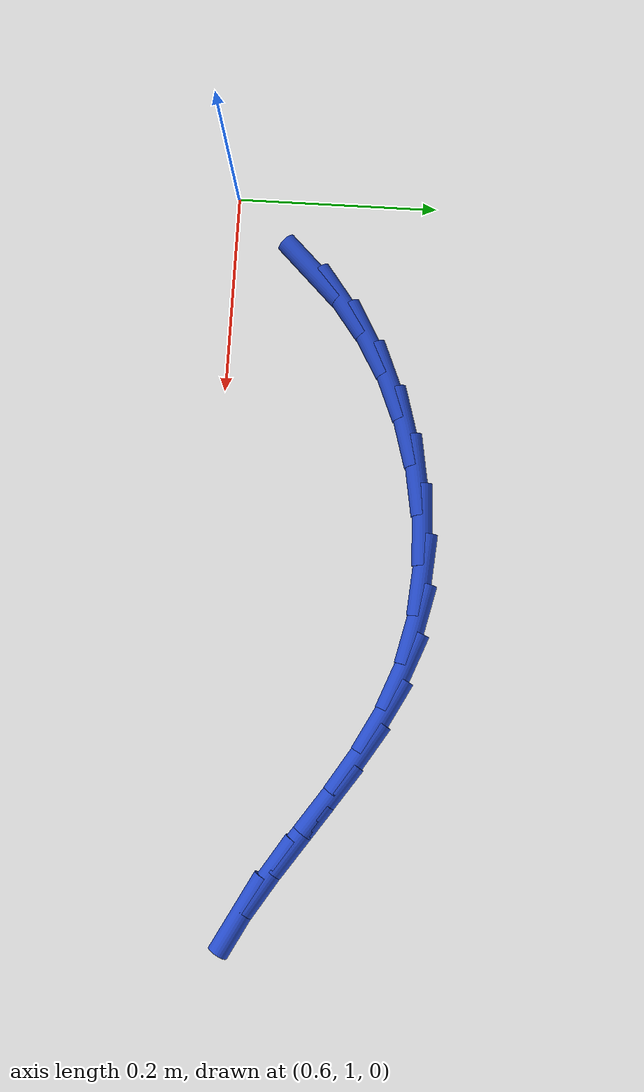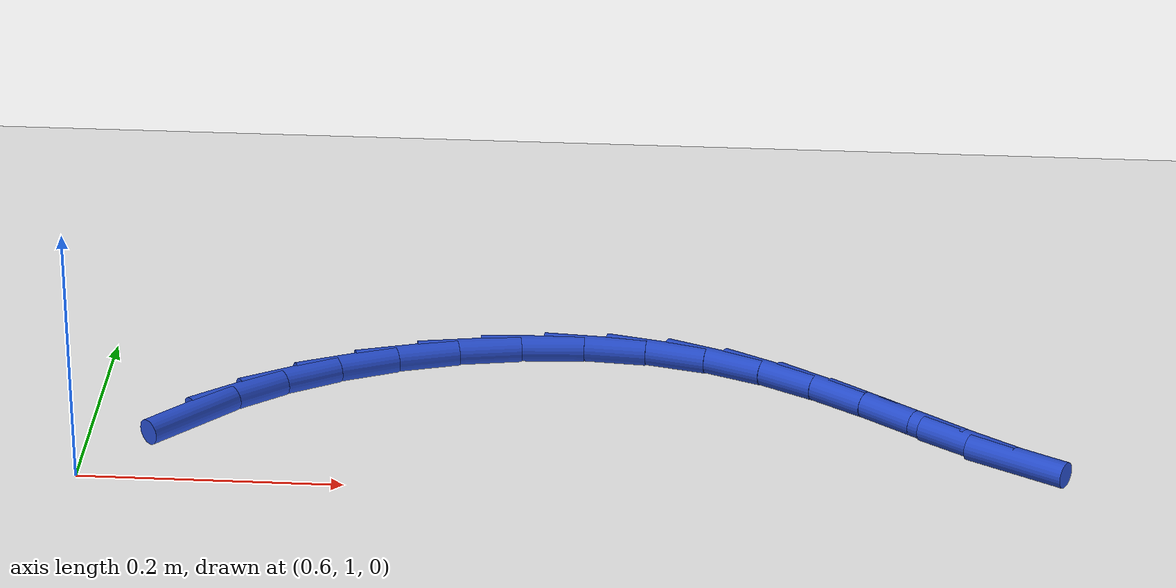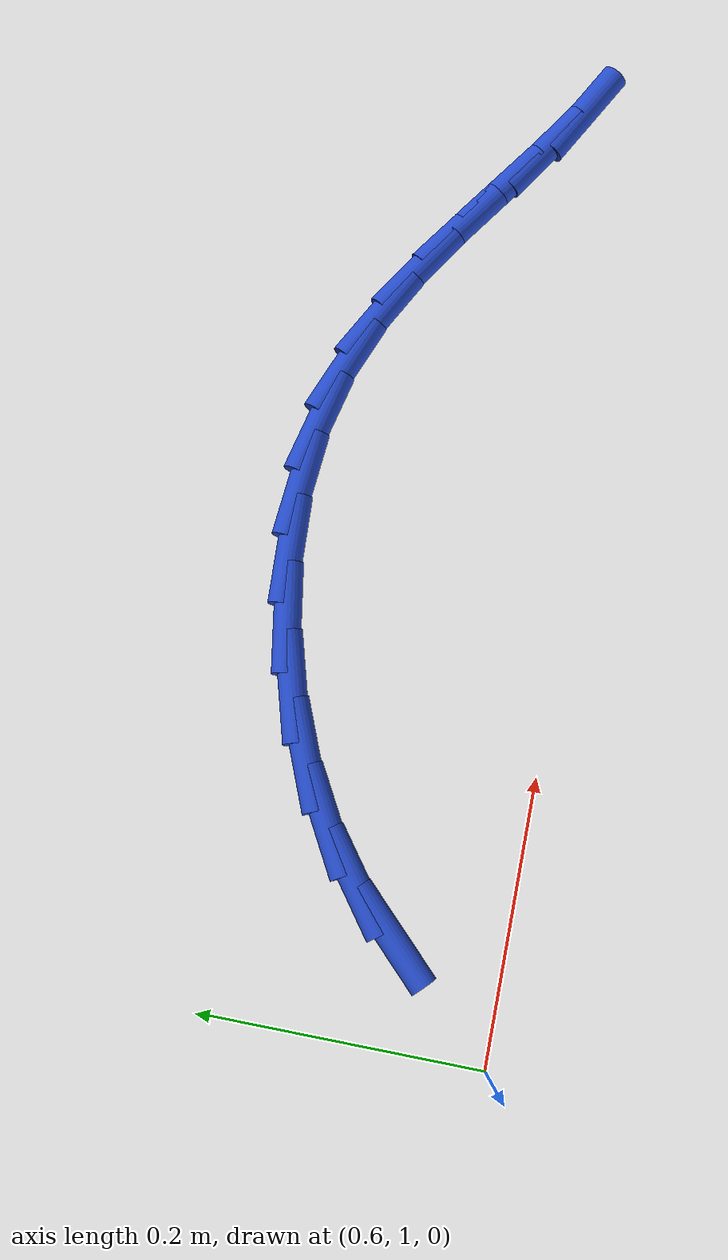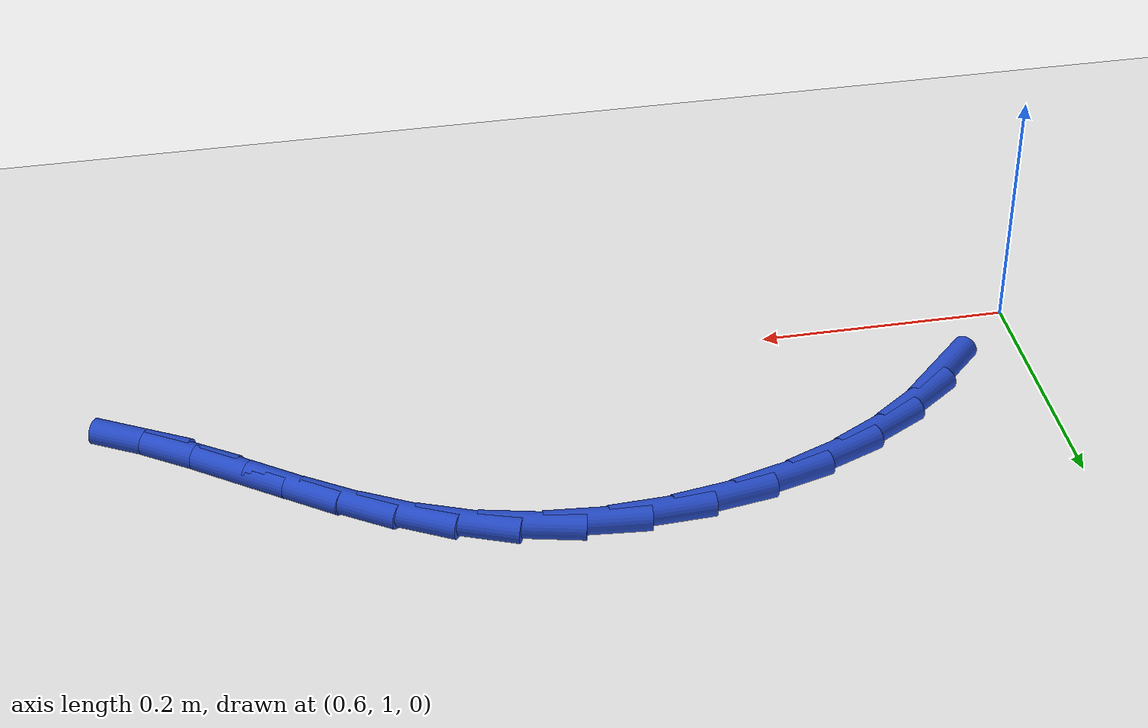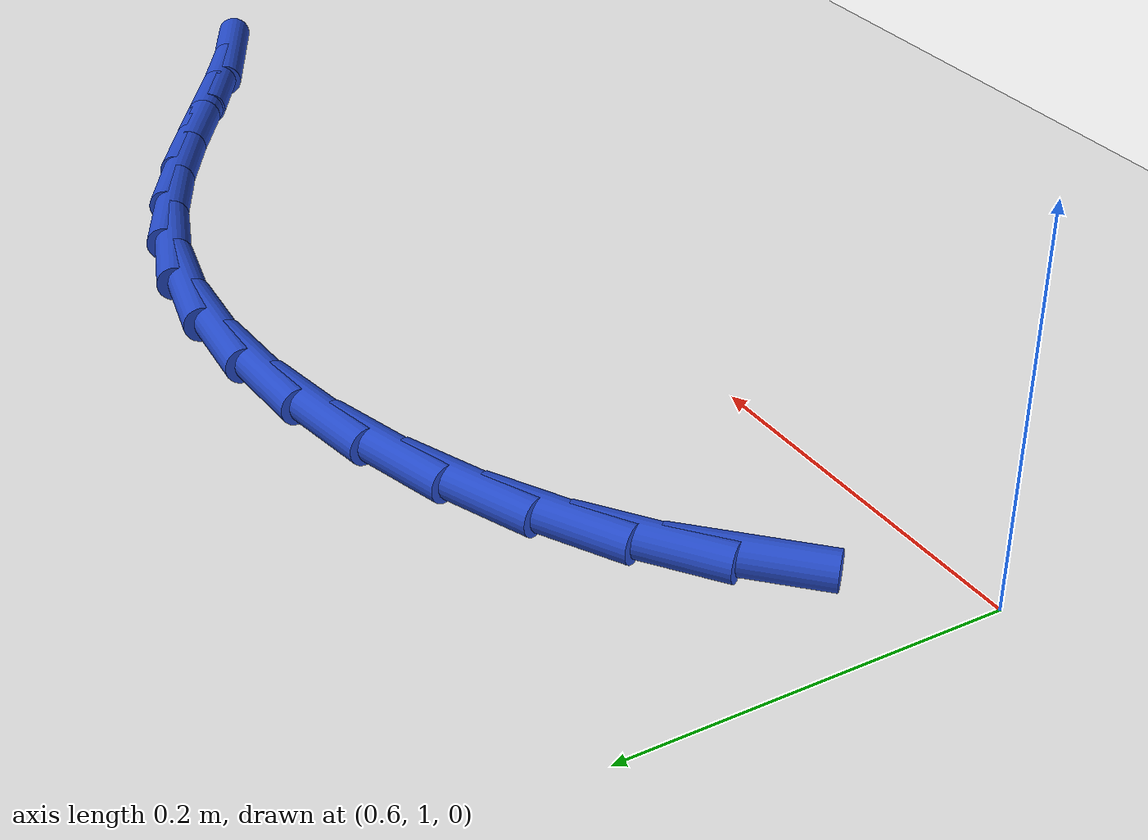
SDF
<sdf version="1.6">
 <world name="default">
  <model name="ground_plane">
   <static>1</static>
   <link name="link">
    <collision name="collision">
     <geometry><plane><normal>0 0 1</normal><size>100 100</size></plane></geometry>
     <surface><friction><ode><mu>100</mu><mu2>50</mu2></ode></friction></surface>
    </collision>
    <visual name="visual">
     <cast_shadows>0</cast_shadows>
     <geometry><plane><normal>0 0 1</normal><size>100 100</size></plane></geometry>
     <material>
      <script><uri>file://media/materials/scripts/gazebo.material</uri><name>Gazebo/WhiteGlow</name></script>
     </material>
    </visual>
   </link>
  </model>
  <model name="line">
   <link name="link_32">
    <pose>0.6750472994294157 1.0794522539602032 0.01 0 1.57 0.7867143735615041</pose>
    <collision name="collision">
     <geometry><cylinder><radius>0.01</radius><length>0.08</length></cylinder></geometry>
    </collision>
    <visual name="visual">
     <material>
      <script><name>Gazebo/Blue</name><uri>file://media/materials/scripts/gazebo.material</uri></script>
     </material>
     <geometry><cylinder><radius>0.01</radius><length>0.08</length></cylinder></geometry>
    </visual>
   </link>
   <link name="link_33">
    <pose>0.7061681466164945 1.1106551323156735 0.01 0 1.57 0.6380628842356526</pose>
    <collision name="collision">
     <geometry><cylinder><radius>0.01</radius><length>0.08</length></cylinder></geometry>
    </collision>
    <visual name="visual">
     <material>
      <script><name>Gazebo/Blue</name><uri>file://media/materials/scripts/gazebo.material</uri></script>
     </material>
     <geometry><cylinder><radius>0.01</radius><length>0.08</length></cylinder></geometry>
    </visual>
   </link>
   <link name="link_34">
    <pose>0.7430139396188868 1.137977658771415 0.01 0 1.57 0.5077910132675795</pose>
    <collision name="collision">
     <geometry><cylinder><radius>0.01</radius><length>0.08</length></cylinder></geometry>
    </collision>
    <visual name="visual">
     <material>
      <script><name>Gazebo/Blue</name><uri>file://media/materials/scripts/gazebo.material</uri></script>
     </material>
     <geometry><cylinder><radius>0.01</radius><length>0.08</length></cylinder></geometry>
    </visual>
   </link>
   <link name="link_35">
    <pose>0.7844616695295357 1.1610417516980769 0.01 0 1.57 0.3892429577701108</pose>
    <collision name="collision">
     <geometry><cylinder><radius>0.01</radius><length>0.08</length></cylinder></geometry>
    </collision>
    <visual name="visual">
     <material>
      <script><name>Gazebo/Blue</name><uri>file://media/materials/scripts/gazebo.material</uri></script>
     </material>
     <geometry><cylinder><radius>0.01</radius><length>0.08</length></cylinder></geometry>
    </visual>
   </link>
   <link name="link_36">
    <pose>0.8293883274413849 1.179469329466307 0.01 0 1.57 0.27641514583940036</pose>
    <collision name="collision">
     <geometry><cylinder><radius>0.01</radius><length>0.08</length></cylinder></geometry>
    </collision>
    <visual name="visual">
     <material>
      <script><name>Gazebo/Blue</name><uri>file://media/materials/scripts/gazebo.material</uri></script>
     </material>
     <geometry><cylinder><radius>0.01</radius><length>0.08</length></cylinder></geometry>
    </visual>
   </link>
   <link name="link_37">
    <pose>0.8766709044473785 1.1928823104467547 0.01 0 1.57 0.16383254843054224</pose>
    <collision name="collision">
     <geometry><cylinder><radius>0.01</radius><length>0.08</length></cylinder></geometry>
    </collision>
    <visual name="visual">
     <material>
      <script><name>Gazebo/Blue</name><uri>file://media/materials/scripts/gazebo.material</uri></script>
     </material>
     <geometry><cylinder><radius>0.01</radius><length>0.08</length></cylinder></geometry>
    </visual>
   </link>
   <link name="link_38">
    <pose>0.9251863916404601 1.2009026130100682 0.01 0 1.57 0.046229753475823136</pose>
    <collision name="collision">
     <geometry><cylinder><radius>0.01</radius><length>0.08</length></cylinder></geometry>
    </collision>
    <visual name="visual">
     <material>
      <script><name>Gazebo/Blue</name><uri>file://media/materials/scripts/gazebo.material</uri></script>
     </material>
     <geometry><cylinder><radius>0.01</radius><length>0.08</length></cylinder></geometry>
    </visual>
   </link>
   <link name="link_39">
    <pose>0.9738117801135738 1.2031521555268958 0.01 0 1.57 -0.08171455629872709</pose>
    <collision name="collision">
     <geometry><cylinder><radius>0.01</radius><length>0.08</length></cylinder></geometry>
    </collision>
    <visual name="visual">
     <material>
      <script><name>Gazebo/Blue</name><uri>file://media/materials/scripts/gazebo.material</uri></script>
     </material>
     <geometry><cylinder><radius>0.01</radius><length>0.08</length></cylinder></geometry>
    </visual>
   </link>
   <link name="link_40">
    <pose>1.0214240609596634 1.199252856367887 0.01 0 1.57 -0.22528909483939474</pose>
    <collision name="collision">
     <geometry><cylinder><radius>0.01</radius><length>0.08</length></cylinder></geometry>
    </collision>
    <visual name="visual">
     <material>
      <script><name>Gazebo/Blue</name><uri>file://media/materials/scripts/gazebo.material</uri></script>
     </material>
     <geometry><cylinder><radius>0.01</radius><length>0.08</length></cylinder></geometry>
    </visual>
   </link>
   <link name="link_41">
    <pose>1.0669028967350735 1.1888300336523996 0.01 0 1.57 -0.3730333630170915</pose>
    <collision name="collision">
     <geometry><cylinder><radius>0.01</radius><length>0.08</length></cylinder></geometry>
    </collision>
    <visual name="visual">
     <material>
      <script><name>Gazebo/Blue</name><uri>file://media/materials/scripts/gazebo.material</uri></script>
     </material>
     <geometry><cylinder><radius>0.01</radius><length>0.08</length></cylinder></geometry>
    </visual>
   </link>
   <link name="link_42">
    <pose>1.1096062982664967 1.1721177594563281 0.01 0 1.57 -0.4891935609033027</pose>
    <collision name="collision">
     <geometry><cylinder><radius>0.01</radius><length>0.08</length></cylinder></geometry>
    </collision>
    <visual name="visual">
     <material>
      <script><name>Gazebo/Blue</name><uri>file://media/materials/scripts/gazebo.material</uri></script>
     </material>
     <geometry><cylinder><radius>0.01</radius><length>0.08</length></cylinder></geometry>
    </visual>
   </link>
   <link name="link_43">
    <pose>1.1499192502585034 1.150657049875582 0.01 0 1.57 -0.5674120787454867</pose>
    <collision name="collision">
     <geometry><cylinder><radius>0.01</radius><length>0.08</length></cylinder></geometry>
    </collision>
    <visual name="visual">
     <material>
      <script><name>Gazebo/Blue</name><uri>file://media/materials/scripts/gazebo.material</uri></script>
     </material>
     <geometry><cylinder><radius>0.01</radius><length>0.08</length></cylinder></geometry>
    </visual>
   </link>
   <link name="link_44">
    <pose>1.188359657382814 1.1261580771647128 0.01 0 1.57 -0.6083154921437188</pose>
    <collision name="collision">
     <geometry><cylinder><radius>0.01</radius><length>0.08</length></cylinder></geometry>
    </collision>
    <visual name="visual">
     <material>
      <script><name>Gazebo/Blue</name><uri>file://media/materials/scripts/gazebo.material</uri></script>
     </material>
     <geometry><cylinder><radius>0.01</radius><length>0.08</length></cylinder></geometry>
    </visual>
   </link>
   <link name="link_45">
    <pose>1.2254454243111492 1.1003310135782736 0.01 0 1.57 -0.6120330214751345</pose>
    <collision name="collision">
     <geometry><cylinder><radius>0.01</radius><length>0.08</length></cylinder></geometry>
    </collision>
    <visual name="visual">
     <material>
      <script><name>Gazebo/Blue</name><uri>file://media/materials/scripts/gazebo.material</uri></script>
     </material>
     <geometry><cylinder><radius>0.01</radius><length>0.08</length></cylinder></geometry>
    </visual>
   </link>
   <link name="link_46">
    <pose>1.26169445571523 1.0748860313708168 0.01 0 1.57 -0.5763380105706445</pose>
    <collision name="collision">
     <geometry><cylinder><radius>0.01</radius><length>0.08</length></cylinder></geometry>
    </collision>
    <visual name="visual">
     <material>
      <script><name>Gazebo/Blue</name><uri>file://media/materials/scripts/gazebo.material</uri></script>
     </material>
     <geometry><cylinder><radius>0.01</radius><length>0.08</length></cylinder></geometry>
    </visual>
   </link>
   <link name="link_47">
    <pose>1.2976246562667768 1.0515333027968943 0.01 0 1.57 -0.49600063560847657</pose>
    <collision name="collision">
     <geometry><cylinder><radius>0.01</radius><length>0.08</length></cylinder></geometry>
    </collision>
    <visual name="visual">
     <material>
      <script><name>Gazebo/Blue</name><uri>file://media/materials/scripts/gazebo.material</uri></script>
     </material>
     <geometry><cylinder><radius>0.01</radius><length>0.08</length></cylinder></geometry>
    </visual>
   </link>
  </model>
 </world>
</sdf>
